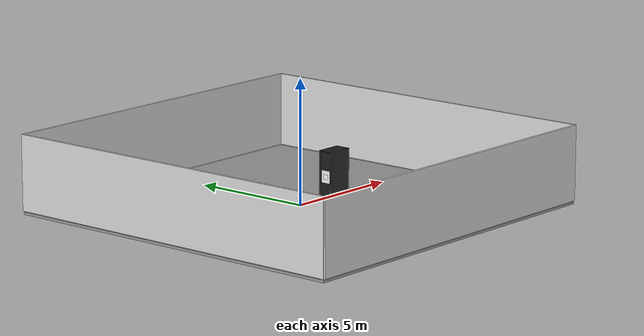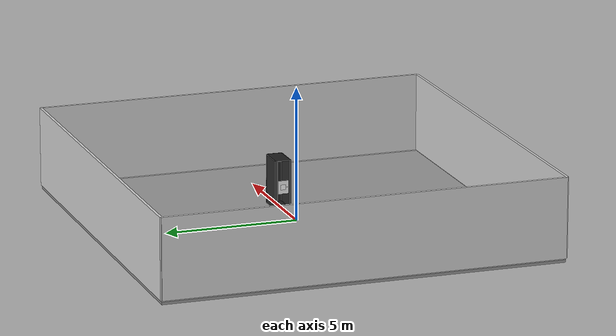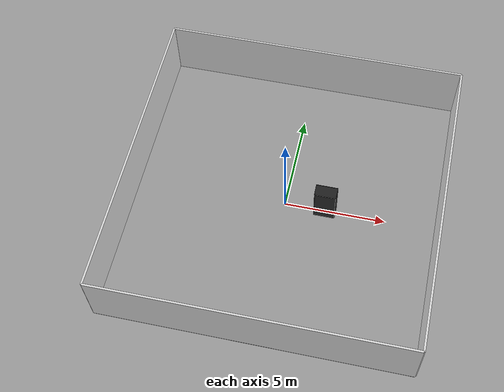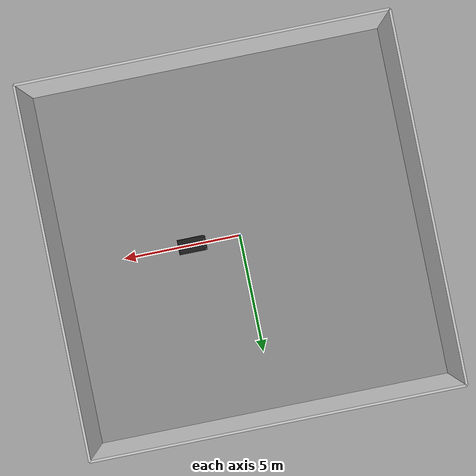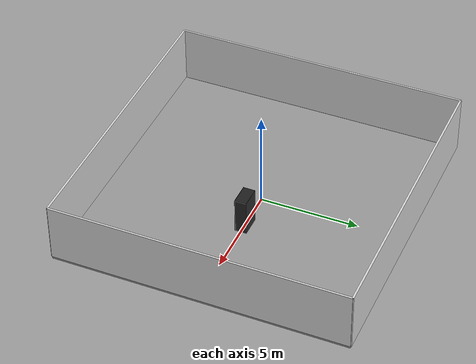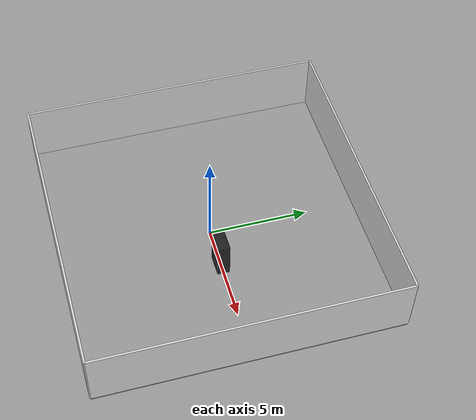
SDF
<sdf version="1.9">
 <world name="barcode_calibration">
  <plugin filename="ignition-gazebo-physics-system" name="ignition::gazebo::systems::Physics"/>
  <plugin filename="ignition-gazebo-sensors-system" name="ignition::gazebo::systems::Sensors">
   <render_engine>ogre2</render_engine>
  </plugin>
  <plugin filename="ignition-gazebo-contact-system" name="ignition::gazebo::systems::Contact"/>
  <plugin filename="ignition-gazebo-scene-broadcaster-system" name="ignition::gazebo::systems::SceneBroadcaster"/>
  <plugin filename="ignition-gazebo-user-commands-system" name="ignition::gazebo::systems::UserCommands"/>
  <physics name="1ms" type="ode">
   <max_step_size>0.001</max_step_size>
   <real_time_factor>0.5</real_time_factor>
  </physics>
  <scene>
   <ambient>0.4 0.4 0.4 1.0</ambient>
   <background>0.7 0.7 0.7 1.0</background>
   <grid>true</grid>
   <origin_visual>true</origin_visual>
  </scene>
  <atmosphere type="adiabatic">
   <temperature>288</temperature>
   <temperature_gradient>0.2</temperature_gradient>
  </atmosphere>
  <light type="directional" name="sun">
   <pose>0 0 10 0 0 0</pose>
   <diffuse>0.8 0.8 0.8 1</diffuse>
   <specular>0.2 0.2 0.2 1</specular>
   <direction>-0.5 0.1 -0.9</direction>
  </light>
  <light type="directional" name="plate_fill">
   <pose>0 0 2.0 0 0 0</pose>
   <diffuse>0.4 0.4 0.4 1</diffuse>
   <specular>0.0 0.0 0.0 1</specular>
   <direction>0.7 0 -0.7</direction>
   <cast_shadows>false</cast_shadows>
  </light>
  <model name="room_floor">
   <static>true</static>
   <pose>0 0 -0.1 0 0 0</pose>
   <link name="link">
    <collision name="collision"><geometry><box><size>15.0 15.0 0.1</size></box></geometry></collision>
    <visual name="visual">
     <geometry><box><size>15.0 15.0 0.1</size></box></geometry>
     <material><ambient>0.6 0.6 0.6 1</ambient><diffuse>0.6 0.6 0.6 1</diffuse></material>
    </visual>
   </link>
  </model>
  <model name="room_wall_front">
   <static>true</static>
   <pose>0 -7.5 1.5 0 0 0</pose>
   <link name="link">
    <collision name="collision"><geometry><box><size>15.0 0.1 3</size></box></geometry></collision>
    <visual name="visual">
     <geometry><box><size>15.0 0.1 3</size></box></geometry>
     <material><ambient>0.85 0.85 0.85 1</ambient><diffuse>0.85 0.85 0.85 1</diffuse></material>
    </visual>
   </link>
  </model>
  <model name="room_wall_back">
   <static>true</static>
   <pose>0 7.5 1.5 0 0 0</pose>
   <link name="link">
    <collision name="collision"><geometry><box><size>15.0 0.1 3</size></box></geometry></collision>
    <visual name="visual">
     <geometry><box><size>15.0 0.1 3</size></box></geometry>
     <material><ambient>0.85 0.85 0.85 1</ambient><diffuse>0.85 0.85 0.85 1</diffuse></material>
    </visual>
   </link>
  </model>
  <model name="room_wall_left">
   <static>true</static>
   <pose>-7.5 0 1.5 0 0 0</pose>
   <link name="link">
    <collision name="collision"><geometry><box><size>0.1 15.0 3</size></box></geometry></collision>
    <visual name="visual">
     <geometry><box><size>0.1 15.0 3</size></box></geometry>
     <material><ambient>0.85 0.85 0.85 1</ambient><diffuse>0.85 0.85 0.85 1</diffuse></material>
    </visual>
   </link>
  </model>
  <model name="room_wall_right">
   <static>true</static>
   <pose>7.5 0 1.5 0 0 0</pose>
   <link name="link">
    <collision name="collision"><geometry><box><size>0.1 15.0 3</size></box></geometry></collision>
    <visual name="visual">
     <geometry><box><size>0.1 15.0 3</size></box></geometry>
     <material><ambient>0.85 0.85 0.85 1</ambient><diffuse>0.85 0.85 0.85 1</diffuse></material>
    </visual>
   </link>
  </model>
  <include>
   <name>calibration_plate_model</name>
   <uri>model://calibration_plate_model</uri>
   <pose>2.0 0 0 0 0 -1.5708</pose>
  </include>
  <include>
   <name>barcode_label_CA11B07</name>
   <uri>model://barcode_plate_target</uri>
   <pose>1.4803 -0.14 0.85 0 0 -1.5708</pose>
  </include>
 </world>
</sdf>

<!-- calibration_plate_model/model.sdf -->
<sdf version="1.9">
  <model name="calibration_plate_model">
    <static>true</static>

    <link name="rack_body">

      <inertial>
        <mass>60.0</mass>
        <pose>0 0 0.9335 0 0 0</pose>
        <inertia>
          <ixx>15.0</ixx>
          <iyy>12.0</iyy>
          <izz>5.0</izz>
        </inertia>
      </inertial>

      <collision name="rack_collision">
        <pose>0 0.11 0.9335 0 0 0</pose>
        <geometry>
          <box>
            <size>0.61 0.85 1.8669</size>
          </box>
        </geometry>
      </collision>

      <!-- ===================== VISUALS ===================== -->

      <!-- Bottom plate -->
      <visual name="bottom_plate">
        <pose>0 0 0.01 0 0 0</pose>
        <geometry>
          <box>
            <size>0.61 1.07 0.02</size>
          </box>
        </geometry>
        <material>
          <ambient>0.08 0.08 0.08 1</ambient>
          <diffuse>0.12 0.12 0.12 1</diffuse>
        </material>
      </visual>

      <!-- Top plate -->
      <visual name="top_plate">
        <pose>0 0 1.8569 0 0 0</pose>
        <geometry>
          <box>
            <size>0.61 1.07 0.02</size>
          </box>
        </geometry>
        <material>
          <ambient>0.08 0.08 0.08 1</ambient>
          <diffuse>0.12 0.12 0.12 1</diffuse>
        </material>
      </visual>

      <!-- Corner posts (4x), square 0.04 x 0.04 cross-section -->
      <visual name="post_front_left">
        <pose>-0.285 -0.515 0.9335 0 0 0</pose>
        <geometry>
          <box>
            <size>0.04 0.04 1.8669</size>
          </box>
        </geometry>
        <material>
          <ambient>0.05 0.05 0.05 1</ambient>
          <diffuse>0.1 0.1 0.1 1</diffuse>
        </material>
      </visual>

      <visual name="post_front_right">
        <pose>0.285 -0.515 0.9335 0 0 0</pose>
        <geometry>
          <box>
            <size>0.04 0.04 1.8669</size>
          </box>
        </geometry>
        <material>
          <ambient>0.05 0.05 0.05 1</ambient>
          <diffuse>0.1 0.1 0.1 1</diffuse>
        </material>
      </visual>

      <visual name="post_back_left">
        <pose>-0.285 0.515 0.9335 0 0 0</pose>
        <geometry>
          <box>
            <size>0.04 0.04 1.8669</size>
          </box>
        </geometry>
        <material>
          <ambient>0.05 0.05 0.05 1</ambient>
          <diffuse>0.1 0.1 0.1 1</diffuse>
        </material>
      </visual>

      <visual name="post_back_right">
        <pose>0.285 0.515 0.9335 0 0 0</pose>
        <geometry>
          <box>
            <size>0.04 0.04 1.8669</size>
          </box>
        </geometry>
        <material>
          <ambient>0.05 0.05 0.05 1</ambient>
          <diffuse>0.1 0.1 0.1 1</diffuse>
        </material>
      </visual>

      <!-- Side panels (left/right) -->
      <visual name="side_panel_left">
        <pose>-0.295 0 0.9335 0 0 0</pose>
        <geometry>
          <box>
            <size>0.02 1.07 1.8669</size>
          </box>
        </geometry>
        <material>
          <ambient>0.12 0.12 0.12 1</ambient>
          <diffuse>0.18 0.18 0.18 1</diffuse>
        </material>
      </visual>

      <visual name="side_panel_right">
        <pose>0.295 0 0.9335 0 0 0</pose>
        <geometry>
          <box>
            <size>0.02 1.07 1.8669</size>
          </box>
        </geometry>
        <material>
          <ambient>0.12 0.12 0.12 1</ambient>
          <diffuse>0.18 0.18 0.18 1</diffuse>
        </material>
      </visual>

      <!-- Back panel -->
      <visual name="back_panel">
        <pose>0 0.525 0.9335 0 0 0</pose>
        <geometry>
          <box>
            <size>0.61 0.02 1.8669</size>
          </box>
        </geometry>
        <material>
          <ambient>0.1 0.1 0.1 1</ambient>
          <diffuse>0.15 0.15 0.15 1</diffuse>
        </material>
      </visual>

      <!-- Front mounting rails (19" / 0.4826m apart), thin vertical strips -->
      <visual name="mount_rail_left">
        <pose>-0.2413 -0.515 0.9335 0 0 0</pose>
        <geometry>
          <box>
            <size>0.03 0.03 1.8669</size>
          </box>
        </geometry>
        <material>
          <ambient>0.3 0.3 0.3 1</ambient>
          <diffuse>0.4 0.4 0.4 1</diffuse>
        </material>
      </visual>

      <visual name="mount_rail_right">
        <pose>0.2413 -0.515 0.9335 0 0 0</pose>
        <geometry>
          <box>
            <size>0.03 0.03 1.8669</size>
          </box>
        </geometry>
        <material>
          <ambient>0.3 0.3 0.3 1</ambient>
          <diffuse>0.4 0.4 0.4 1</diffuse>
        </material>
      </visual>

      <!-- ===================== CALIBRATION PLATE ===================== -->
      <visual name="calib_plate_backing">
        <pose>0 -0.51 0.85 0 0 0</pose>
        <geometry>
          <box>
            <size>0.40 0.01 0.50</size>
          </box>
        </geometry>
        <material>
          <ambient>0.85 0.85 0.85 1</ambient>
          <diffuse>0.95 0.95 0.95 1</diffuse>
          <specular>0.02 0.02 0.02 1</specular>
        </material>
      </visual>

      <!-- The AprilTag itself: Standard41h12, id 0.-->
      <visual name="calib_plate_apriltag">
        <pose>0 -0.5155 0.85 -1.5708 0 0</pose>
        <geometry>
          <box>
            <size>0.19286 0.19286 0.001</size>
          </box>
        </geometry>
        <material>
          <ambient>1 1 1 1</ambient>
          <diffuse>1 1 1 1</diffuse>
          <pbr>
            <metal>
              <albedo_map>model://calibration_plate_model/materials/textures/tag41_12_00000.png</albedo_map>
              <metalness>0.0</metalness>
              <roughness>1.0</roughness>
            </metal>
          </pbr>
        </material>
      </visual>

    </link>
  </model>
</sdf>

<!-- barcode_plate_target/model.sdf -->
<!-- GENERATED plate target. Printed dimensions come from
     generate_barcode_labels.py constants; do not hand-edit. -->
<sdf version="1.9">
  <model name="barcode_label_CA11B07">
    <static>true</static>
    <link name="label_link">
      <visual name="substrate">
        <geometry><box><size>0.03810 0.00635 0.01270</size></box></geometry>
        <material>
          <ambient>0.9 0.9 0.9 1</ambient>
          <diffuse>0.9 0.9 0.9 1</diffuse>
        </material>
      </visual>
      <visual name="print">
        <pose>0 -0.00327 0 1.5708 0 0</pose>
        <geometry><box><size>0.03810 0.01270 0.0002</size></box></geometry>
        <material>
          <ambient>1 1 1 1</ambient>
          <diffuse>1 1 1 1</diffuse>
          <pbr><metal>
            <albedo_map>model://barcode_labels/materials/textures/CA11B07.png</albedo_map>
            <metalness>0.0</metalness>
            <roughness>1.0</roughness>
          </metal></pbr>
        </material>
      </visual>
    </link>
  </model>
</sdf>
